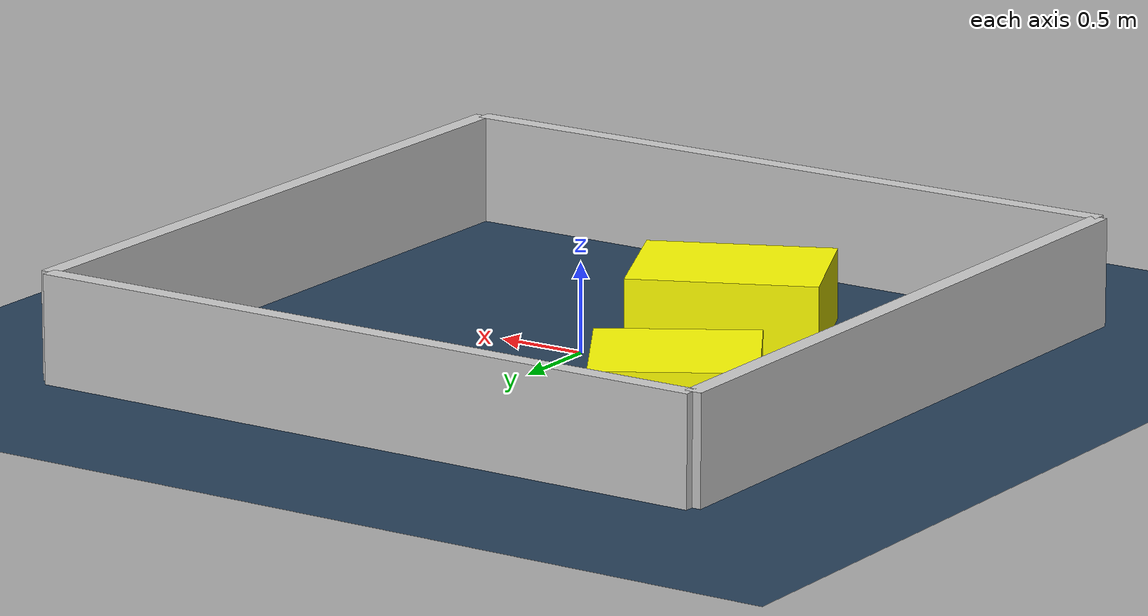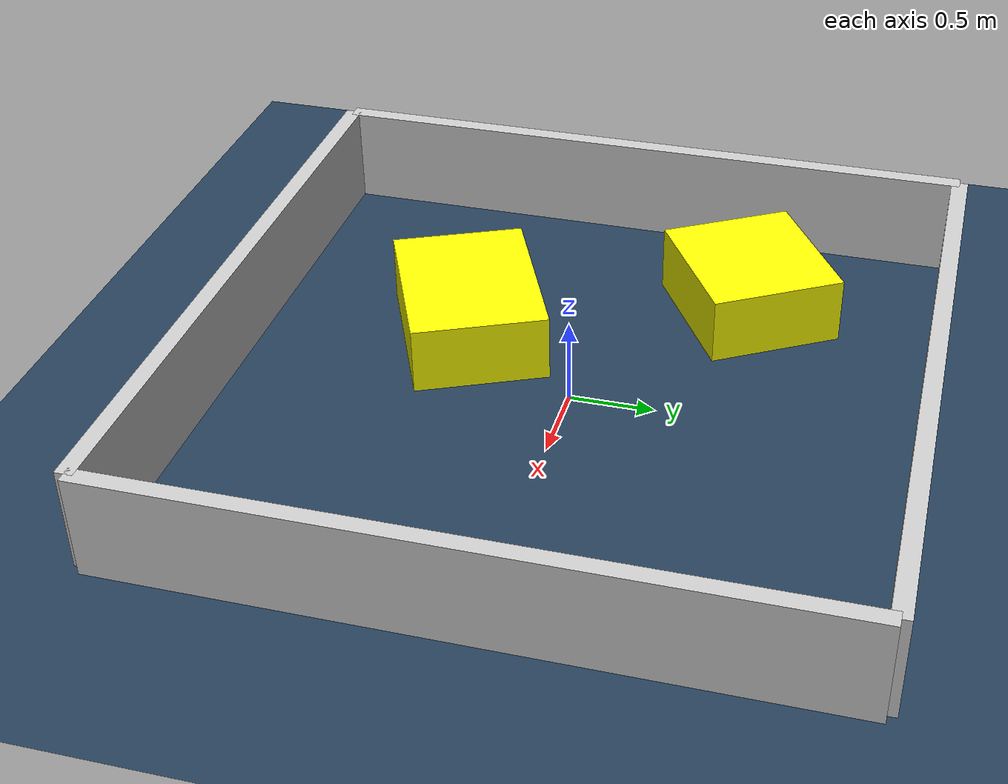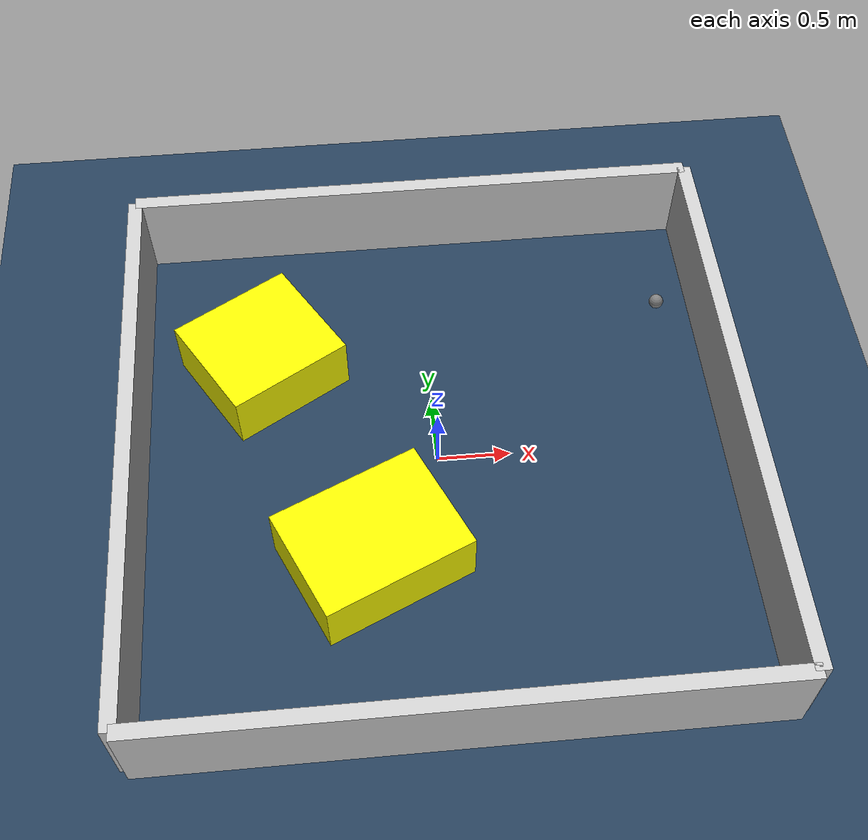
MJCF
<?xml version="1.0" ?>
<mujoco model="generated_environment">
  <option timestep="0.01" integrator="RK4" cone="elliptic"/>
  <default>
    <geom density="1"/>
  </default>
  <asset>
    <texture builtin="gradient" height="3072" rgb1="0.3 0.5 0.7" rgb2="0 0 0" type="skybox" width="512"/>
    <texture builtin="checker" height="300" mark="edge" markrgb="0.8 0.8 0.8" name="groundplane" rgb1="0.2 0.3 0.4" rgb2="0.1 0.2 0.3" type="2d" width="300"/>
    <material name="groundplane" reflectance="0.2" texrepeat="5 5" texture="groundplane" texuniform="true"/>
    <material name="robot" rgba="0.0 1.0 0.0 1"/>
  </asset>
  <worldbody>
    <light dir="0 0 -1" directional="true" pos="0 0 1.5"/>
    <geom condim="4" friction="1.0 0.005 0.001" material="groundplane" name="floor" size="0 0 0.05" type="plane"/>
    <body name="walls">
      <geom name="wall_1" condim="4" pos="-2.0 0.0 0.3" rgba="0.800000011920929 0.800000011920929 0.800000011920929 1.0" size="0.05 2.0 0.3" type="box"/>
      <geom name="wall_2" condim="4" pos="2.0 0.0 0.3" rgba="0.800000011920929 0.800000011920929 0.800000011920929 1.0" size="0.05 2.0 0.3" type="box"/>
      <geom name="wall_3" condim="4" pos="0.0 -2.0 0.3" rgba="0.800000011920929 0.800000011920929 0.800000011920929 1.0" size="2.0 0.05 0.3" type="box"/>
      <geom name="wall_4" condim="4" pos="0.0 2.0 0.3" rgba="0.800000011920929 0.800000011920929 0.800000011920929 1.0" size="2.0 0.05 0.3" type="box"/>
    </body>
    <body name="robot">
      <joint name="joint_x" type="slide" pos="0 0 0" axis="1 0 0"/>
      <joint name="joint_y" type="slide" pos="0 0 0" axis="0 1 0"/>
      <geom name="robot" type="sphere" pos="1.6789394428533813 1.0788010577794664 0.2" size="0.05" mass="5." friction="1.0 0.005 0.0001" condim="4"/>
      <site name="sensor_ball"/>
    </body>
    <body name="obstacle_1_movable">
      <geom name="obstacle_1_movable" condim="4" pos="-0.4771688665423266 -0.7347001224730685 0.2" euler="0 0 294.60448521454697" friction="1.0 0.005 0.001" rgba="1 1 0 1" size="0.3966168678805142 0.5203518353408259 0.2" type="box" mass="0.1"/>
      <joint type="free"/>
    </body>
    <body name="obstacle_2_movable">
      <geom name="obstacle_2_movable" condim="4" pos="-1.1488588549833034 0.8453240169842944 0.2" euler="0 0 301.19709748865756" friction="1.0 0.005 0.001" rgba="1 1 0 1" size="0.40504677595117966 0.43938995617036863 0.2" type="box" mass="0.1"/>
      <joint type="free"/>
    </body>
  </worldbody>
  <actuator>
    <motor name="actuator_x" joint="joint_x" gear="1" ctrlrange="-1 1"/>
    <motor name="actuator_y" joint="joint_y" gear="1" ctrlrange="-1 1"/>
  </actuator>
</mujoco>
